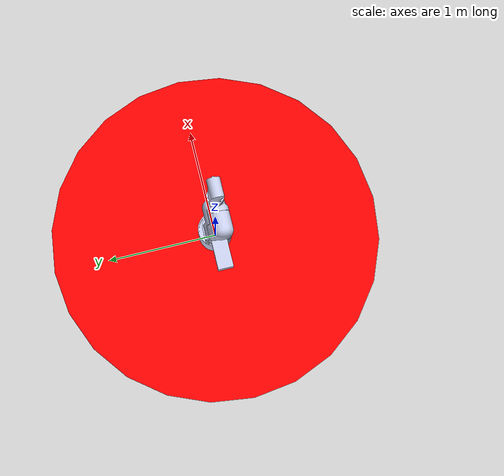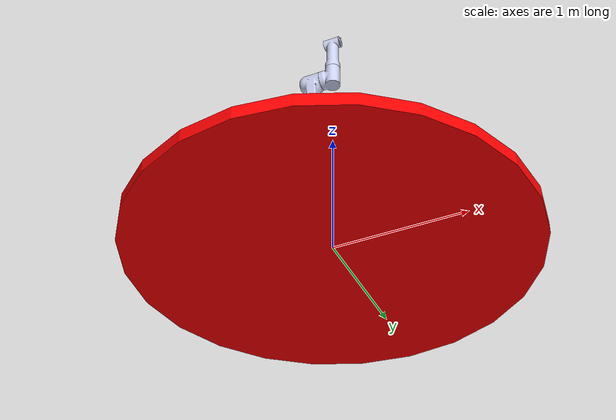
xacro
<?xml version="1.0" encoding="utf-8" ?>

<robot name="robot_nextup" xmlns:xacro="http://www.ros.org/wiki/xacro">
    <link name="world" />
    <joint name="ground" type="fixed">
        <parent link="world" />
        <child link="ground_link" />
    </joint>
    <link name="ground_link">
        <visual>
            <origin xyz="0 0 0" rpy="0 0 0" />
            <geometry>
                <cylinder radius="1.5" length="0.1" />
            </geometry>
            <material name="">
                <color rgba="1 0 0 0.0" />
            </material>
        </visual>
    </link>

    <joint name="base" type="fixed">
        <parent link="world" />
        <child link="base_link" />
    </joint>

    <link
        name="base_link">
        <inertial>
        <origin
            xyz="4.996E-16 -0.00011451 0.25926"
            rpy="0 0 0" />
        <mass
            value="11.396" />
        <inertia
            ixx="0.2145"
            ixy="-1.8009E-15"
            ixz="-2.5057E-16"
            iyy="0.21469"
            iyz="-0.00015389"
            izz="0.13801" />
        </inertial>
        <visual>
        <origin
            xyz="0 0 0"
            rpy="0 0 0" />
        <geometry>
            <mesh
            filename="package://nextup_moveit_config/meshes/robot/base_link.STL" />
        </geometry>
        <material
            name="">
            <color
            rgba="0.79216 0.81961 0.93333 1" />
        </material>
        </visual>
        <collision>
        <origin
            xyz="0 0 0"
            rpy="0 0 0" />
        <geometry>
            <mesh
            filename="package://nextup_moveit_config/meshes/robot/base_link.STL" />
        </geometry>
        </collision>
    </link>
    <link
        name="link1">
        <inertial>
        <origin
            xyz="-0.19294 1.3878E-15 0.11272"
            rpy="0 0 0" />
        <mass
            value="6.4295" />
        <inertia
            ixx="0.024502"
            ixy="-9.7405E-16"
            ixz="0.0025439"
            iyy="0.064104"
            iyz="-2.228E-17"
            izz="0.063843" />
        </inertial>
        <visual>
        <origin
            xyz="0 0 0"
            rpy="0 0 0" />
        <geometry>
            <mesh
            filename="package://nextup_moveit_config/meshes/robot/link1.STL" />
        </geometry>
        <material
            name="">
            <color
            rgba="0.79216 0.81961 0.93333 1" />
        </material>
        </visual>
        <collision>
        <origin
            xyz="0 0 0"
            rpy="0 0 0" />
        <geometry>
            <mesh
            filename="package://nextup_moveit_config/meshes/robot/link1.STL" />
        </geometry>
        </collision>
    </link>
    <joint
        name="joint1"
        type="revolute">
        <origin
        xyz="0 0 0.493"
        rpy="0 0 0" />
        <parent
        link="base_link" />
        <child
        link="link1" />
        <axis
        xyz="0 0 -1" />
        <limit
        lower="-5.0"
        upper="5.0"
        effort="0"
        velocity="0" />
    </joint>
    <link
        name="link2">
        <inertial>
        <origin
            xyz="-2.0219E-05 0.39079 0.063187"
            rpy="0 0 0" />
        <mass
            value="5.9094" />
        <inertia
            ixx="0.24879"
            ixy="-2.7679E-06"
            ixz="-2.7251E-06"
            iyy="0.020768"
            iyz="-0.0044564"
            izz="0.2567" />
        </inertial>
        <visual>
        <origin
            xyz="0 0 0"
            rpy="0 0 0" />
        <geometry>
            <mesh
            filename="package://nextup_moveit_config/meshes/robot/link2.STL" />
        </geometry>
        <material
            name="">
            <color
            rgba="0.79216 0.81961 0.93333 1" />
        </material>
        </visual>
        <collision>
        <origin
            xyz="0 0 0"
            rpy="0 0 0" />
        <geometry>
            <mesh
            filename="package://nextup_moveit_config/meshes/robot/link2.STL" />
        </geometry>
        </collision>
    </link>
    <joint
        name="joint2"
        type="revolute">
        <origin
        xyz="-0.089 0 0.125"
        rpy="1.5708 0 1.5708" />
        <parent
        link="link1" />
        <child
        link="link2" />
        <axis
        xyz="0 0 -1" />
        <limit
        lower="-3.14"
        upper="3.14"
        effort="0"
        velocity="0" />
    </joint>
    <link
        name="link3">
        <inertial>
        <origin
            xyz="-2.8453E-06 0.30926 0.056092"
            rpy="0 0 0" />
        <mass
            value="3.2455" />
        <inertia
            ixx="0.071331"
            ixy="4.3529E-07"
            ixz="8.6084E-08"
            iyy="0.0096193"
            iyz="-0.0013454"
            izz="0.072526" />
        </inertial>
        <visual>
        <origin
            xyz="0 0 0"
            rpy="0 0 0" />
        <geometry>
            <mesh
            filename="package://nextup_moveit_config/meshes/robot/link3.STL" />
        </geometry>
        <material
            name="">
            <color
            rgba="0.79216 0.81961 0.93333 1" />
        </material>
        </visual>
        <collision>
        <origin
            xyz="0 0 0"
            rpy="0 0 0" />
        <geometry>
            <mesh
            filename="package://nextup_moveit_config/meshes/robot/link3.STL" />
        </geometry>
        </collision>
    </link>
    <joint
        name="joint3"
        type="revolute">
        <origin
        xyz="0 0.6 -0.004"
        rpy="3.1416 0 3.1416" />
        <parent
        link="link2" />
        <child
        link="link3" />
        <axis
        xyz="0 0 -1" />
        <limit
        lower="-3.14"
        upper="3.14"
        effort="0"
        velocity="0" />
    </joint>
    <link
        name="link4">
        <inertial>
        <origin
            xyz="-0.028909 -1.6989E-07 0.079456"
            rpy="0 0 0" />
        <mass
            value="1.3626" />
        <inertia
            ixx="0.002894"
            ixy="2.0214E-09"
            ixz="0.00012571"
            iyy="0.004659"
            iyz="-2.2301E-09"
            izz="0.0045693" />
        </inertial>
        <visual>
        <origin
            xyz="0 0 0"
            rpy="0 0 0" />
        <geometry>
            <mesh
            filename="package://nextup_moveit_config/meshes/robot/link4.STL" />
        </geometry>
        <material
            name="">
            <color
            rgba="0.79216 0.81961 0.93333 1" />
        </material>
        </visual>
        <collision>
        <origin
            xyz="0 0 0"
            rpy="0 0 0" />
        <geometry>
            <mesh
            filename="package://nextup_moveit_config/meshes/robot/link4.STL" />
        </geometry>
        </collision>
    </link>
    <joint
        name="joint4"
        type="revolute">
        <origin
        xyz="0 0.45 -0.005"
        rpy="-3.1416 0 -1.5708" />
        <parent
        link="link3" />
        <child
        link="link4" />
        <axis
        xyz="0 0 -1" />
        <limit
        lower="-3.14"
        upper="3.14"
        effort="0"
        velocity="0" />
    </joint>
    <link
        name="link5">
        <inertial>
        <origin
            xyz="8.0384E-08 -0.00277 0.13161"
            rpy="0 0 0" />
        <mass
            value="0.68533" />
        <inertia
            ixx="0.0047863"
            ixy="-7.5906E-11"
            ixz="-1.0505E-09"
            iyy="0.0047414"
            iyz="-9.5913E-05"
            izz="0.0014206" />
        </inertial>
        <visual>
        <origin
            xyz="0 0 0"
            rpy="0 0 0" />
        <geometry>
            <mesh
            filename="package://nextup_moveit_config/meshes/robot/link5.STL" />
        </geometry>
        <material
            name="">
            <color
            rgba="0.79216 0.81961 0.93333 1" />
        </material>
        </visual>
        <collision>
        <origin
            xyz="0 0 0"
            rpy="0 0 0" />
        <geometry>
            <mesh
            filename="package://nextup_moveit_config/meshes/robot/link5.STL" />
        </geometry>
        </collision>
    </link>
    <joint
        name="joint5"
        type="revolute">
        <origin
        xyz="-0.137 0 0.088"
        rpy="1.5708 0 -1.5708" />
        <parent
        link="link4" />
        <child
        link="link5" />
        <axis
        xyz="0 0 -1" />
        <limit
        lower="-6.28"
        upper="6.28"
        effort="0"
        velocity="0" />
    </joint>
    <link
        name="link6">
        <inertial>
        <origin
            xyz="-2.2204E-16 0 -0.045114"
            rpy="0 0 0" />
        <mass
            value="0.2487" />
        <inertia
            ixx="0.00028976"
            ixy="3.3881E-21"
            ixz="-2.8773E-19"
            iyy="0.00028976"
            iyz="-3.3041E-19"
            izz="0.00011142" />
        </inertial>
        <visual>
        <origin
            xyz="0 0 0"
            rpy="0 0 0" />
        <geometry>
            <mesh
            filename="package://nextup_moveit_config/meshes/robot/link6.STL" />
        </geometry>
        <material
            name="">
            <color
            rgba="0.79216 0.81961 0.93333 1" />
        </material>
        </visual>
        <collision>
        <origin
            xyz="0 0 0"
            rpy="0 0 0" />
        <geometry>
            <mesh
            filename="package://nextup_moveit_config/meshes/robot/link6.STL" />
        </geometry>
        </collision>
    </link>
    <joint
        name="joint6"
        type="revolute">
        <origin
        xyz="0 0.068 0.245"
        rpy="1.5708 0 3.1416" />
        <parent
        link="link5" />
        <child
        link="link6" />
        <axis
        xyz="0 0 -1" />
        <limit
        lower="-6.28"
        upper="6.28"
        effort="0"
        velocity="0" />
    </joint>

  <joint name="end" type="fixed">
    <origin xyz="0 0 0.02" rpy="3.14 0 -1.57" />
    <parent
      link="link6" />
    <child
      link="end" />
  </joint>

  <link name="end"/>

    <!-- Test TF -->
  <link name="test_tf"/>
  <joint name="base_to_test_tf" type="fixed">
    <parent link="base_link"/>
    <child link="test_tf"/>

    <origin
      xyz="0.2907 -0.2040 1.1835"
      rpy="0.0 0.0 -1.5708"/>
  </joint>

</robot>
